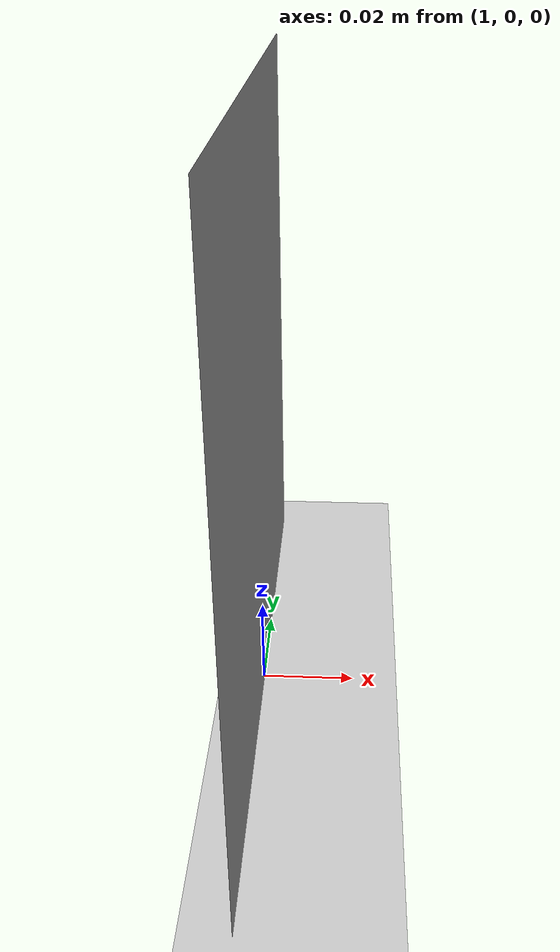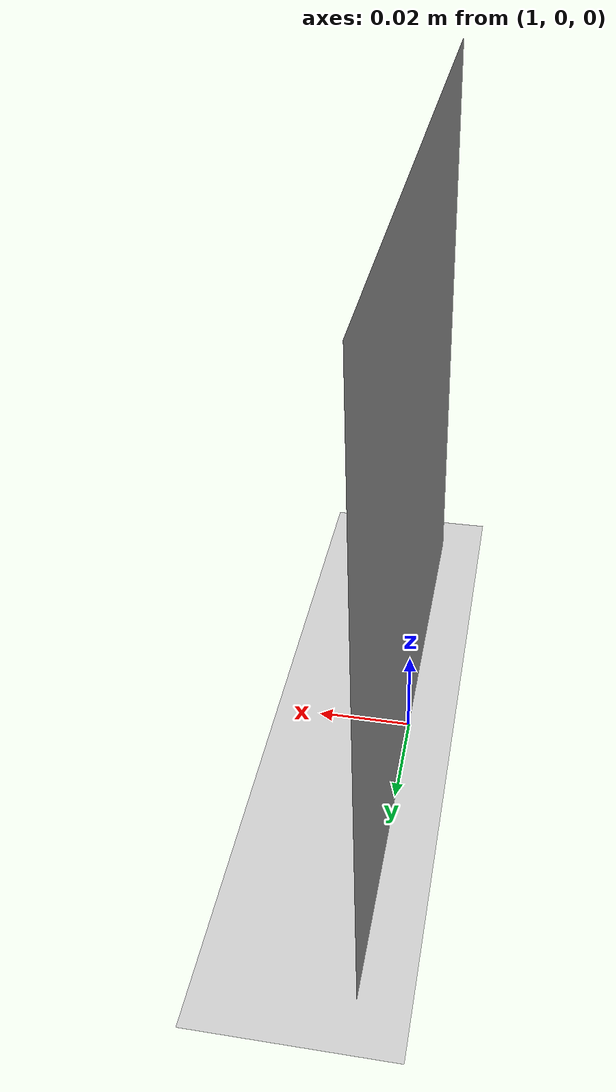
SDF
<sdf version="1.5">
 <world name="default">
  <spherical_coordinates>
   <latitude_deg>48.8789</latitude_deg>
   <longitude_deg>2.36778</longitude_deg>
   <surface_model>EARTH_WGS84</surface_model>
   <elevation>0</elevation>
   <heading_deg>0</heading_deg>
  </spherical_coordinates>
  <physics name="default_physics" default="0" type="ode">
   <real_time_update_rate>1000</real_time_update_rate>
   <max_step_size>0.001</max_step_size>
   <real_time_factor>1</real_time_factor>
   <max_contacts>20</max_contacts>
   <gravity>0 0 -9.81</gravity>
   <magnetic_field>0 2.1e-05 -4.3e-05</magnetic_field>
   <ode>
    <solver>
     <type>world</type>
     <min_step_size>0.0001</min_step_size>
     <iters>50</iters>
     <precon_iters>0</precon_iters>
     <sor>1.4</sor>
     <use_dynamic_moi_rescaling>1</use_dynamic_moi_rescaling>
    </solver>
    <constraints>
     <cfm>0</cfm>
     <erp>0.2</erp>
     <contact_max_correcting_vel>100</contact_max_correcting_vel>
     <contact_surface_layer>0.001</contact_surface_layer>
    </constraints>
   </ode>
  </physics>
  <atmosphere type="adiabatic">
   <temperature>298.15</temperature>
   <pressure>101325</pressure>
   <temperature_gradient>-0.0065</temperature_gradient>
  </atmosphere>
  <plugin name="fwman" filename="libsphinx_fwman.so">
   <spawn_point name="default"><pose>0 0 0.2 0 0 0</pose></spawn_point>
  </plugin>
  <plugin name="wind" filename="libsphinx_wind.so">
   <magnitude_mean>0.0</magnitude_mean>
   <direction_mean>0.0</direction_mean>
   <elevation_mean>0.0</elevation_mean>
   <magnitude_time_for_rise>10.0</magnitude_time_for_rise>
   <direction_time_for_rise>30.0</direction_time_for_rise>
   <elevation_time_for_rise>0.0</elevation_time_for_rise>
   <magnitude_expr>val*(1+0.05*sin(2*pi*time/15))</magnitude_expr>
   <direction_expr>360*time/60</direction_expr>
   <elevation_expr>0.03*noise()</elevation_expr>
  </plugin>
  <light name="sun" type="directional">
   <pose>0 0 10 0 -0 0</pose>
   <diffuse>0.8 0.8 0.8 1</diffuse>
   <specular>0.2 0.2 0.2 1</specular>
   <attenuation>
    <range>1000</range>
    <constant>0.9</constant>
    <linear>0.01</linear>
    <quadratic>0.001</quadratic>
   </attenuation>
   <direction>-0.5 0.1 -0.9</direction>
  </light>
  <model name="ground_plane">
   <static>1</static>
   <link name="link">
    <collision name="collision">
     <geometry><plane><normal>0 0 1</normal><size>100 100</size></plane></geometry>
     <surface>
      <contact><collide_bitmask>65535</collide_bitmask></contact>
      <friction><ode><mu>100</mu><mu2>50</mu2></ode></friction>
     </surface>
    </collision>
    <visual name="visual">
     <cast_shadows>0</cast_shadows>
     <geometry><plane><normal>0 0 1</normal><size>100 100</size></plane></geometry>
     <material>
      <script><uri>file://media/materials/scripts/gazebo.material</uri><name>Gazebo/Grey</name></script>
     </material>
    </visual>
   </link>
  </model>
  <scene><ambient>0.4 0.4 0.4 1</ambient><background>0.7 0.7 0.7 1</background><shadows>0</shadows></scene>
  <model name="Mire">
   <link name="link_0">
    <gravity>0</gravity>
    <visual name="visual">
     <geometry><mesh><uri>model://Mire/meshes/mire.dae</uri><scale>0.13 0.13 0.13</scale></mesh></geometry>
     <material>
      <lighting>1</lighting>
      <script><uri>model://Mire/materials/textures</uri><name>vrc/Mire</name></script>
      <shader type="pixel"/>
      <ambient>0.3 0.3 0.3 1</ambient>
      <diffuse>0.7 0.7 0.7 1</diffuse>
      <specular>0.01 0.01 0.01 1</specular>
      <emissive>0 0 0 1</emissive>
     </material>
     <cast_shadows>0</cast_shadows>
    </visual>
    <inertial>
     <inertia><ixx>1</ixx><ixy>0</ixy><ixz>0</ixz><iyy>1</iyy><iyz>0</iyz><izz>1</izz></inertia>
     <mass>1</mass>
    </inertial>
   </link>
   <static>0</static>
   <pose>1 0 0.065 0 -0 0</pose>
  </model>
  <light name="user_point_light_0" type="point">
   <pose>-2.14102 -0.002631 1 0 -0 0</pose>
   <diffuse>0.5 0.5 0.5 1</diffuse>
   <specular>0.1 0.1 0.1 1</specular>
   <attenuation>
    <range>20</range>
    <constant>0.5</constant>
    <linear>0.01</linear>
    <quadratic>0.001</quadratic>
   </attenuation>
   <cast_shadows>0</cast_shadows>
   <direction>0 0 -1</direction>
  </light>
 </world>
</sdf>
